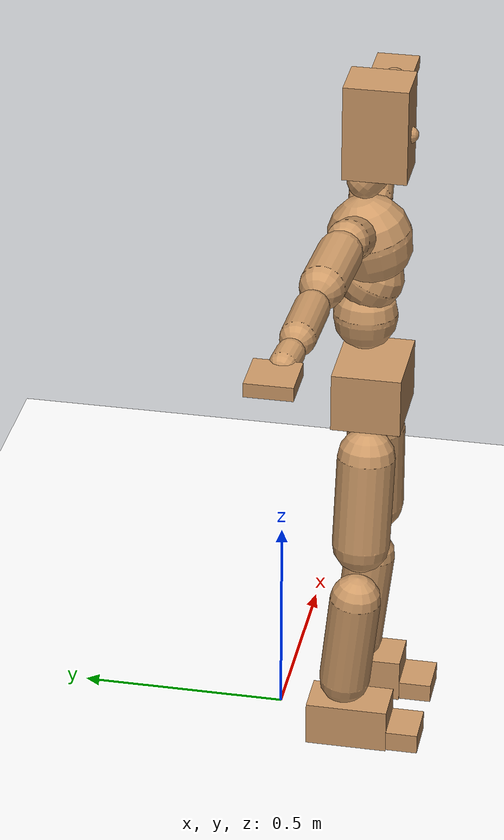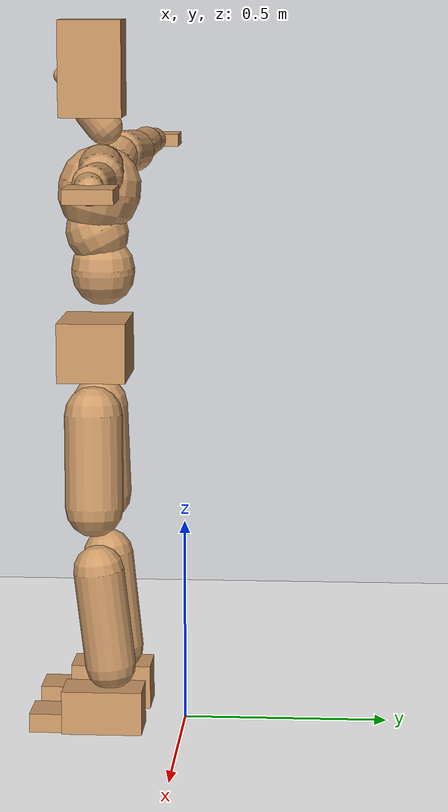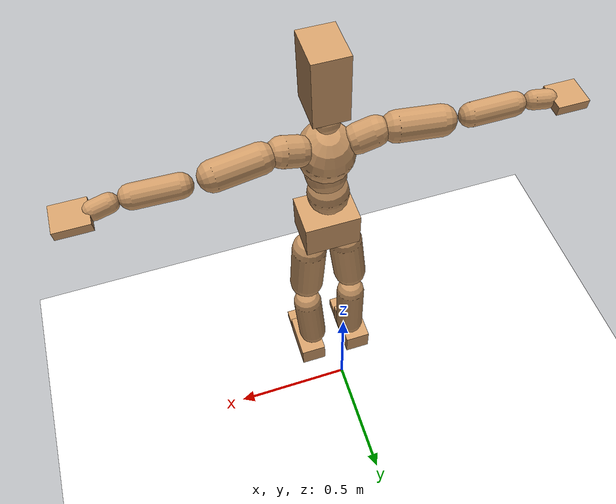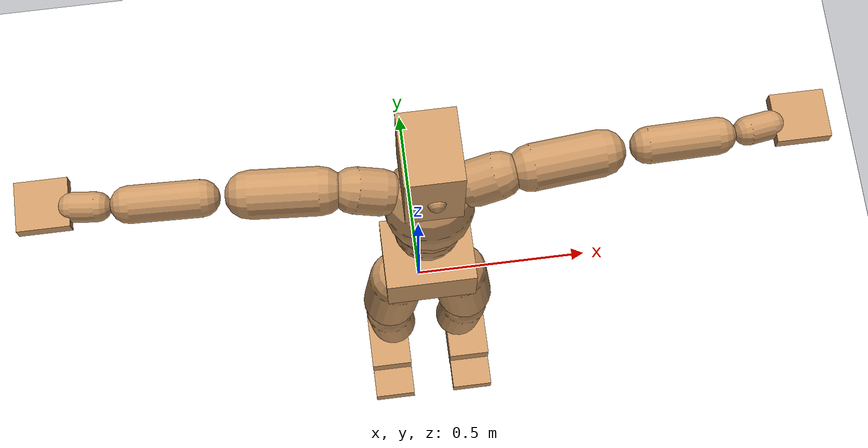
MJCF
<mujoco model="humanoid">
  <option integrator="implicitfast" />

  <visual>
    <global offwidth="1280" offheight="960" />
    <headlight active="1" ambient="0.34 0.34 0.34" diffuse="0.5 0.5 0.5" />
  </visual>

  <default>
    <joint damping="2" stiffness="2" armature="0.01" limited="true" solimplimit="0 .99 .01" />
    <geom condim="1" friction="0.7 0.005 0.0001" solimp=".99 .99 .003" solref="0.015 1" margin="0.001" rgba="0.8 0.6 .4 1" />
    <default class="smplcontact">
      <geom condim="3" friction="1. 0.005 0.0001" solref="0.015 1" solimp="0.98 0.98 0.001" priority="1" />
    </default>
    <default class="stiff_medium">
      <joint stiffness="10" />
    </default>
    <default class="stiff_medium_higher">
      <joint stiffness="50" />
    </default>
    <default class="stiff_high">
      <joint stiffness="100" />
    </default>
  </default>

  <asset>
    <texture type="skybox" builtin="gradient" rgb1="0.99 0.99 0.99" rgb2="0.608 0.828 0.892" width="100" />
    <texture builtin="flat" height="1278" mark="cross" markrgb="1 1 1" name="texgeom" random="0.01" rgb1="0.8 0.6 0.4" rgb2="0.8 0.6 0.4" type="cube" width="127" />
    <texture name="texplane" type="2d" builtin="checker" markrgb="1 1 1" rgb1="0.756 0.772 0.76" rgb2="0.6 0.6 0.6" width="100" height="100" />
    <material name="MatPlane" reflectance="0.5" texture="texplane" texrepeat="1 1" texuniform="true" />
    <material name="geom" texture="texgeom" texuniform="true" />
  </asset>

  <worldbody>
    <light name="tracking_light" pos="0 0 7" dir="0 0 -1" directional="true" cutoff="100" exponent="1" diffuse="1 1 1" specular="0.1 0.1 0.1" mode="trackcom" />
    <camera name="back" pos="0 3 2.4" xyaxes="-1 0 0 0 -1 2" mode="trackcom" />
    <camera name="side" pos="-3 0 2.4" xyaxes="0 -1 0 1 0 2" mode="trackcom" />
    <camera name="front_side" pos="-2.8 -2.8 0.8" xyaxes="0.5 -0.5 0 0.1 0.1 1" mode="trackcom" />
    <geom condim="3" name="floor" pos="0 0 0" rgba="1 1 1 1" size="100 100 .2" type="plane" material="MatPlane" />
    <body name="Pelvis" pos="-0.0018 -0.2233 0.94387" euler="90 0 0">
      <site name="Pelvis" size="0.01" />
      <freejoint name="Pelvis" />
      <geom type="box" pos="-0.0000 -0.0121 -0.0055" size="0.1069 0.0722 0.083" quat="1.0000 0.0000 0.0000 0.0000" density="3165.830099" name="Pelvis" />
      <body name="L_Hip" pos="0.0695 -0.0914 -0.0068">
        <joint name="L_Hip_x" type="hinge" pos="0 0 0" axis="1 0 0" stiffness="13.888139761904764" range="-160.0 22.92" class="stiff_medium" damping="21.039901989370083" armature="0.014166443320590734"/>
        <joint name="L_Hip_y" type="hinge" pos="0 0 0" axis="0 1 0" stiffness="13.923243095238096" range="-70.0 70.0" class="stiff_medium" damping="15.258375011262281" armature="0.016721535808272972"/>
        <joint name="L_Hip_z" type="hinge" pos="0 0 0" axis="0 0 1" stiffness="13.915029642857142" range="-28.65 90.0" class="stiff_medium" damping="14.038260696134163" armature="0.014162583079640552"/>
        <geom type="capsule" density="2040.816327" fromto="0.0069 -0.075 -0.0009 0.0274 -0.3002 -0.0036" size="0.070725" name="L_Hip" />
        <body name="L_Knee" pos="0.0343 -0.3752 -0.0045">
          <joint name="L_Knee_x" type="hinge" pos="0 0 0" axis="1 0 0" range="-5.16 171.89" damping="11.4820242679251" armature="0.014565973855622034" stiffness="2.8284429047619044"/>
          <joint name="L_Knee_y" type="hinge" pos="0 0 0" axis="0 1 0" range="-4.58 6.88" damping="12.390321794406205" armature="0.017184878323046177" stiffness="2.7916999047619044"/>
          <joint name="L_Knee_z" type="hinge" pos="0 0 0" axis="0 0 1" range="-6.88 4.58" damping="11.480192879362214" armature="0.014546602847254822" stiffness="2.8313059999999997"/>
          <geom type="capsule" density="1234.567901" fromto="-0.0027 -0.0796 -0.0087 -0.0109 -0.3184 -0.035" size="0.062215" name="L_Knee" />
          <body name="L_Ankle" pos="-0.0136 -0.398 -0.0437">
            <joint name="L_Ankle_x" type="hinge" pos="0 0 0" axis="1 0 0" range="-45.84 45.84" class="stiff_medium" damping="9.615703597889492" armature="0.01688752923343926" stiffness="15.208749999999998"/>
            <joint name="L_Ankle_y" type="hinge" pos="0 0 0" axis="0 1 0" range="-74.48 22.92" class="stiff_medium" damping="4.824905716367604" armature="0.01700754512430657" stiffness="15.208749999999998"/>
            <joint name="L_Ankle_z" type="hinge" pos="0 0 0" axis="0 0 1" range="-4.58 4.58" class="stiff_medium" damping="9.870190519434976" armature="0.01779324053038622" stiffness="15.208749999999998"/>
            <geom type="box" pos="0.0233 -0.0239 0.0242" size="0.055545 0.05336 0.09775" quat="1.0000 0.0000 0.0000 0.0000" density="449.071558" name="L_Ankle" class="smplcontact" />
            <body name="L_Toe" pos="0.0264 -0.0558 0.1193">
              <joint name="L_Toe_x" type="hinge" pos="0 0 0" axis="1 0 0" range="-91.67 22.92" armature="0.0182488178904167" damping="3.3319166201504795" stiffness="3.0417499999999995"/>
              <joint name="L_Toe_y" type="hinge" pos="0 0 0" axis="0 1 0" range="-4.58 4.58" armature="0.01879970215020376" damping="3.381833645092031" stiffness="3.0417499999999995"/>
              <joint name="L_Toe_z" type="hinge" pos="0 0 0" axis="0 0 1" range="-4.58 4.58" armature="0.019913560472276957" damping="3.480576750096122" stiffness="3.0417499999999995"/>
              <geom type="box" pos="-0.003 0.0055 0.0248" size="0.05497 0.023 0.05704" quat="1.0000 0.0000 0.0000 0.0000" density="423.206892" name="L_Toe" class="smplcontact" />
            </body>
          </body>
        </body>
      </body>
      <body name="R_Hip" pos="-0.0677 -0.0905 -0.0043">
        <joint name="R_Hip_x" type="hinge" pos="0 0 0" axis="1 0 0" stiffness="13.888139761904764" range="-160.0 22.92" class="stiff_medium" damping="21.039901989370083" armature="0.014166443320590734"/>
        <joint name="R_Hip_y" type="hinge" pos="0 0 0" axis="0 1 0" stiffness="13.923243095238096" range="-70.0 70.0" class="stiff_medium" damping="15.258375011262281" armature="0.016721535808272972"/>
        <joint name="R_Hip_z" type="hinge" pos="0 0 0" axis="0 0 1" stiffness="13.915029642857142" range="-90.0 28.65" class="stiff_medium" damping="14.038260696134163" armature="0.014162583079640552"/>
        <geom type="capsule" density="2040.816327" fromto="-0.0077 -0.0765 -0.0018 -0.0306 -0.3061 -0.0071" size="0.06969" name="R_Hip" />
        <body name="R_Knee" pos="-0.0383 -0.3826 -0.0089">
          <joint name="R_Knee_x" type="hinge" pos="0 0 0" axis="1 0 0" range="-5.16 171.89" damping="11.4820242679251" armature="0.014565973855622034" stiffness="2.8284429047619044"/>
          <joint name="R_Knee_y" type="hinge" pos="0 0 0" axis="0 1 0" range="-6.88 4.58" damping="12.390321794406205" armature="0.017184878323046177" stiffness="2.7916999047619044"/>
          <joint name="R_Knee_z" type="hinge" pos="0 0 0" axis="0 0 1" range="-4.58 6.88" damping="11.480192879362214" armature="0.014546602847254822" stiffness="2.8313059999999997"/>
          <geom type="capsule" density="1234.567901" fromto="0.0032 -0.0797 -0.0085 0.0126 -0.3187 -0.0338" size="0.062215" name="R_Knee" />
          <body name="R_Ankle" pos="0.0158 -0.3984 -0.0423">
            <joint name="R_Ankle_x" type="hinge" pos="0 0 0" axis="1 0 0" range="-45.84 45.84" class="stiff_medium" damping="9.615703597889492" armature="0.01688752923343926" stiffness="15.208749999999998"/>
            <joint name="R_Ankle_y" type="hinge" pos="0 0 0" axis="0 1 0" range="-22.92 74.48" class="stiff_medium" damping="4.824905716367604" armature="0.01700754512430657" stiffness="15.208749999999998"/>
            <joint name="R_Ankle_z" type="hinge" pos="0 0 0" axis="0 0 1" range="-4.58 4.58" class="stiff_medium" damping="9.870190519434976" armature="0.01779324053038622" stiffness="15.208749999999998"/>
            <geom type="box" pos="-0.0212 -0.0174 0.0256" size="0.055545 0.05497 0.099475" quat="1.0000 0.0000 0.0000 0.0000" density="434.700981" name="R_Ankle" class="smplcontact" />
            <body name="R_Toe" pos="-0.0254 -0.0481 0.1233">
              <joint name="R_Toe_x" type="hinge" pos="0 0 0" axis="1 0 0" range="-91.67 22.92" armature="0.0182488178904167" damping="3.3319166201504795" stiffness="3.0417499999999995"/>
              <joint name="R_Toe_y" type="hinge" pos="0 0 0" axis="0 1 0" range="-4.58 4.58" armature="0.01879970215020376" damping="3.381833645092031" stiffness="3.0417499999999995"/>
              <joint name="R_Toe_z" type="hinge" pos="0 0 0" axis="0 0 1" range="-4.58 4.58" armature="0.019913560472276957" damping="3.480576750096122" stiffness="3.0417499999999995"/>
              <geom type="box" pos="0.0042 0.0045 0.0227" size="0.055085 0.02484 0.056695" quat="1.0000 0.0000 0.0000 0.0000" density="407.384095" name="R_Toe" class="smplcontact" />
            </body>
          </body>
        </body>
      </body>
      <body name="Torso" pos="-0.0025 0.109 -0.0267">
        <joint name="Torso_x" type="hinge" pos="0 0 0" axis="1 0 0" range="-25.78 57.3" class="stiff_medium" damping="15.0" armature="0.010000000000000002" stiffness="10.0"/>
        <joint name="Torso_y" type="hinge" pos="0 0 0" axis="0 1 0" range="-57.3 57.3" class="stiff_high" damping="20.000000000000004" armature="0.010000000000000005" stiffness="100.0"/>
        <joint name="Torso_z" type="hinge" pos="0 0 0" axis="0 0 1" range="-34.38 34.38" class="stiff_high" damping="20.0" armature="0.01" stiffness="100.0"/>
        <geom type="capsule" density="2040.816327" fromto="0.0025 0.0608 0.0005 0.003 0.0743 0.0006" size="0.0769" name="Torso" />
        <body name="Spine" pos="0.0055 0.1352 0.0011">
          <joint name="Spine_x" type="hinge" pos="0 0 0" axis="1 0 0" stiffness="10.0" range="-25.78 57.3" class="stiff_medium" damping="15.000000000000004" armature="0.010000000000000007"/>
          <joint name="Spine_y" type="hinge" pos="0 0 0" axis="0 1 0" stiffness="10.0" range="-57.3 57.3" class="stiff_high" damping="8.0" armature="0.010000000000000002"/>
          <joint name="Spine_z" type="hinge" pos="0 0 0" axis="0 0 1" stiffness="20.0" range="-34.38 34.38" class="stiff_high" damping="12.0" armature="0.010000000000000002"/>
          <geom type="capsule" density="2040.816327" fromto="0.0007 0.0238 0.0114 0.0008 0.0291 0.014" size="0.0755" name="Spine" />
          <body name="Chest" pos="0.0015 0.0529 0.0254">
            <joint name="Chest_x" type="hinge" pos="0 0 0" axis="1 0 0" stiffness="10.0" range="-25.78 57.3" class="stiff_medium" damping="14.999999999999996" armature="0.009999999999999997"/>
            <joint name="Chest_y" type="hinge" pos="0 0 0" axis="0 1 0" stiffness="10.0" range="-57.3 57.3" class="stiff_high" damping="8.000000000000002" armature="0.010000000000000005"/>
            <joint name="Chest_z" type="hinge" pos="0 0 0" axis="0 0 1" stiffness="20.0" range="-34.38 34.38" class="stiff_high" damping="12.0" armature="0.010000000000000002"/>
            <geom type="capsule" density="2040.816327" fromto="-0.0009 0.0682 -0.0173 -0.001 0.0833 -0.0212" size="0.1002" name="Chest" />
            <body name="Neck" pos="-0.0028 0.2139 -0.0429">
              <joint name="Neck_x" type="hinge" pos="0 0 0" axis="1 0 0" range="-28.65 57.3" class="stiff_medium_higher" damping="9.999999999999998" armature="0.009999999999999995" stiffness="50.0"/>
              <joint name="Neck_y" type="hinge" pos="0 0 0" axis="0 1 0" range="-40.11 40.11" class="stiff_medium_higher" damping="10.0" armature="0.01" stiffness="50.0"/>
              <joint name="Neck_z" type="hinge" pos="0 0 0" axis="0 0 1" range="-40.11 40.11" class="stiff_medium_higher" damping="9.999999999999996" armature="0.009999999999999992" stiffness="50.0"/>
              <geom type="capsule" density="1000" fromto="0.001 0.013 0.0103 0.0041 0.052 0.0411" size="0.0436" name="Neck" />
              <body name="Head" pos="0.0052 0.065 0.0513">
                <joint name="Head_x" type="hinge" pos="0 0 0" axis="1 0 0" range="-28.65 57.3" class="stiff_medium_higher" damping="1.9999999999999967" armature="0.009999999999999967" stiffness="50.0"/>
                <joint name="Head_y" type="hinge" pos="0 0 0" axis="0 1 0" range="-40.11 40.11" class="stiff_medium_higher" damping="1.9999999999999998" armature="0.009999999999999998" stiffness="50.0"/>
                <joint name="Head_z" type="hinge" pos="0 0 0" axis="0 0 1" range="-40.11 40.11" class="stiff_medium_higher" damping="1.999999999999999" armature="0.00999999999999999" stiffness="50.0"/>
                <geom type="box" pos="-0.0042 0.0876 -0.0116" size="0.0606 0.1154 0.076" quat="1.0000 0.0000 0.0000 0.0000" density="1018.069894" name="Head" />
                <geom type="capsule" name="nose" size="0.02 0.01" pos="0 0.07 0.05" quat="1 0 0 0" mass="0" contype="0" conaffinity="0" />
              </body>
            </body>
            <body name="L_Thorax" pos="0.0788 0.1217 -0.0341">
              <joint name="L_Thorax_x" type="hinge" pos="0 0 0" axis="1 0 0" range="-10.89 4.58" class="stiff_medium_higher" damping="20.000000000000217" armature="0.010000000000000217" stiffness="50.0"/>
              <joint name="L_Thorax_y" type="hinge" pos="0 0 0" axis="0 1 0" range="-28.65 17.19" class="stiff_medium_higher" damping="20.000000000000004" armature="0.010000000000000005" stiffness="50.0"/>
              <joint name="L_Thorax_z" type="hinge" pos="0 0 0" axis="0 0 1" range="-31.51 40.11" class="stiff_medium_higher" damping="20.0" armature="0.010000000000000002" stiffness="50.0"/>
              <geom type="capsule" density="1000" fromto="0.0182 0.0061 -0.0018 0.0728 0.0244 -0.0071" size="0.0521" name="L_Thorax" />
              <body name="L_Shoulder" pos="0.091 0.0305 -0.0089">
                <joint name="L_Shoulder_x" type="hinge" pos="0 0 0" axis="1 0 0" range="-97.4 97.4" class="stiff_medium" damping="6.000000000000091" armature="0.010000000000000302" stiffness="10.0"/>
                <joint name="L_Shoulder_y" type="hinge" pos="0 0 0" axis="0 1 0" range="-108.86 80.21" class="stiff_medium" damping="6.0" armature="0.01" stiffness="10.0"/>
                <joint name="L_Shoulder_z" type="hinge" pos="0 0 0" axis="0 0 1" range="-97.4 85.94" class="stiff_medium" damping="6.000000000000002" armature="0.010000000000000005" stiffness="10.0"/>
                <geom type="capsule" density="1000" fromto="0.0519 -0.0026 -0.0055 0.2077 -0.0102 -0.022" size="0.0517" name="L_Shoulder" />
                <body name="L_Elbow" pos="0.2596 -0.0128 -0.0275">
                  <joint name="L_Elbow_x" type="hinge" pos="0 0 0" axis="1 0 0" range="-17.19 4.58" damping="4.999999999999822" armature="0.00999999999999929" stiffness="2.0"/>
                  <joint name="L_Elbow_y" type="hinge" pos="0 0 0" axis="0 1 0" range="-180.0 17.19" damping="5.000000000000007" armature="0.010000000000000026" stiffness="2.0"/>
                  <joint name="L_Elbow_z" type="hinge" pos="0 0 0" axis="0 0 1" range="-100.84 4.58" damping="4.999999999999998" armature="0.009999999999999993" stiffness="2.0"/>
                  <geom type="capsule" density="1000" fromto="0.0498 0.0018 -0.0002 0.1994 0.0072 -0.0009" size="0.0405" name="L_Elbow" />
                  <body name="L_Wrist" pos="0.2492 0.009 -0.0012">
                    <joint name="L_Wrist_x" type="hinge" pos="0 0 0" axis="1 0 0" range="-180.0 22.92" armature="0.009999999999999724" damping="1.9999999999999725" stiffness="2.0"/>
                    <joint name="L_Wrist_y" type="hinge" pos="0 0 0" axis="0 1 0" range="-17.19 17.19" armature="0.00999999999999995" damping="1.999999999999995" stiffness="2.0"/>
                    <joint name="L_Wrist_z" type="hinge" pos="0 0 0" axis="0 0 1" range="-22.92 22.92" armature="0.009999999999999946" damping="1.9999999999999947" stiffness="2.0"/>
                    <geom type="capsule" density="1000" fromto="0.0168 -0.0016 -0.003 0.0672 -0.0065 -0.012" size="0.0318" name="L_Wrist" class="smplcontact" />
                    <body name="L_Hand" pos="0.084 -0.0082 -0.0149">
                      <joint name="L_Hand_x" type="hinge" pos="0 0 0" axis="1 0 0" range="-17.19 17.19" armature="0.010000000000000005" damping="2.0000000000000004" stiffness="2.0"/>
                      <joint name="L_Hand_y" type="hinge" pos="0 0 0" axis="0 1 0" range="-51.57 51.57" armature="0.009999999999999974" damping="1.9999999999999973" stiffness="2.0"/>
                      <joint name="L_Hand_z" type="hinge" pos="0 0 0" axis="0 0 1" range="-91.67 91.67" armature="0.010000000000000054" damping="2.0000000000000053" stiffness="2.0"/>
                      <geom type="box" pos="0.0493 0.001 -0.0058" size="0.0585 0.0158 0.0538" quat="1.0000 0.0000 0.0000 0.0000" density="400.552564" name="L_Hand" class="smplcontact" />
                    </body>
                  </body>
                </body>
              </body>
            </body>
            <body name="R_Thorax" pos="-0.0818 0.1188 -0.0386">
              <joint name="R_Thorax_x" type="hinge" pos="0 0 0" axis="1 0 0" range="-10.89 4.58" class="stiff_medium_higher" damping="20.000000000000217" armature="0.010000000000000217" stiffness="50.0"/>
              <joint name="R_Thorax_y" type="hinge" pos="0 0 0" axis="0 1 0" range="-17.19 28.65" class="stiff_medium_higher" damping="20.000000000000004" armature="0.010000000000000005" stiffness="50.0"/>
              <joint name="R_Thorax_z" type="hinge" pos="0 0 0" axis="0 0 1" range="-40.11 31.51" class="stiff_medium_higher" damping="20.0" armature="0.010000000000000002" stiffness="50.0"/>
              <geom type="capsule" density="1000" fromto="-0.0192 0.0065 -0.0018 -0.0768 0.026 -0.0073" size="0.0511" name="R_Thorax" />
              <body name="R_Shoulder" pos="-0.096 0.0326 -0.0091">
                <joint name="R_Shoulder_x" type="hinge" pos="0 0 0" axis="1 0 0" range="-97.4 97.4" class="stiff_medium" damping="6.000000000000091" armature="0.010000000000000302" stiffness="10.0"/>
                <joint name="R_Shoulder_y" type="hinge" pos="0 0 0" axis="0 1 0" range="-80.21 108.86" class="stiff_medium" damping="6.0" armature="0.01" stiffness="10.0"/>
                <joint name="R_Shoulder_z" type="hinge" pos="0 0 0" axis="0 0 1" range="-85.94 97.4" class="stiff_medium" damping="6.000000000000002" armature="0.010000000000000005" stiffness="10.0"/>
                <geom type="capsule" density="1000" fromto="-0.0507 -0.0027 -0.0043 -0.203 -0.0107 -0.0171" size="0.0531" name="R_Shoulder" />
                <body name="R_Elbow" pos="-0.2537 -0.0133 -0.0214">
                  <joint name="R_Elbow_x" type="hinge" pos="0 0 0" axis="1 0 0" range="-17.19 4.58" damping="4.999999999999822" armature="0.00999999999999929" stiffness="2.0"/>
                  <joint name="R_Elbow_y" type="hinge" pos="0 0 0" axis="0 1 0" range="-17.19 180.0" damping="5.000000000000007" armature="0.010000000000000026" stiffness="2.0"/>
                  <joint name="R_Elbow_z" type="hinge" pos="0 0 0" axis="0 0 1" range="-4.58 100.84" damping="4.999999999999998" armature="0.009999999999999993" stiffness="2.0"/>
                  <geom type="capsule" density="1000" fromto="-0.0511 0.0016 -0.0011 -0.2042 0.0062 -0.0044" size="0.0408" name="R_Elbow" />
                  <body name="R_Wrist" pos="-0.2553 0.0078 -0.0056">
                    <joint name="R_Wrist_x" type="hinge" pos="0 0 0" axis="1 0 0" range="-180.0 22.92" armature="0.009999999999999724" damping="1.9999999999999725" stiffness="2.0"/>
                    <joint name="R_Wrist_y" type="hinge" pos="0 0 0" axis="0 1 0" range="-17.19 17.19" armature="0.00999999999999995" damping="1.999999999999995" stiffness="2.0"/>
                    <joint name="R_Wrist_z" type="hinge" pos="0 0 0" axis="0 0 1" range="-22.92 22.92" armature="0.009999999999999946" damping="1.9999999999999947" stiffness="2.0"/>
                    <geom type="capsule" density="1000" fromto="-0.0169 -0.0012 -0.0021 -0.0677 -0.0049 -0.0083" size="0.0326" name="R_Wrist" class="smplcontact" />
                    <body name="R_Hand" pos="-0.0846 -0.0061 -0.0103">
                      <joint name="R_Hand_x" type="hinge" pos="0 0 0" axis="1 0 0" range="-17.19 17.19" armature="0.010000000000000005" damping="2.0000000000000004" stiffness="2.0"/>
                      <joint name="R_Hand_y" type="hinge" pos="0 0 0" axis="0 1 0" range="-51.57 51.57" armature="0.009999999999999974" damping="1.9999999999999973" stiffness="2.0"/>
                      <joint name="R_Hand_z" type="hinge" pos="0 0 0" axis="0 0 1" range="-91.67 91.67" armature="0.010000000000000054" damping="2.0000000000000053" stiffness="2.0"/>
                      <geom type="box" pos="-0.0462 -0.0009 -0.0079" size="0.0569 0.0164 0.0546" quat="1.0000 0.0000 0.0000 0.0000" density="403.679611" name="R_Hand" class="smplcontact" />
                    </body>
                  </body>
                </body>
              </body>
            </body>
          </body>
        </body>
      </body>
    </body>
  </worldbody>
  <actuator>
    <general name="L_Hip_x" joint="L_Hip_x" biastype="affine" gainprm="399.0480087980668" biasprm="-299.04603677038597 -249.98651571428573 -2.8053202652493443" ctrllimited="true" ctrlrange="-1 1" forcerange="-499.97303142857146 499.97303142857146" />
    <general name="L_Hip_y" joint="L_Hip_y" biastype="affine" gainprm="306.1881075550137" biasprm="0.0 -250.61837571428572 -3.0516750022524564" ctrllimited="true" ctrlrange="-1 1" forcerange="-501.23675142857144 501.23675142857144" />
    <general name="L_Hip_z" joint="L_Hip_z" biastype="affine" gainprm="259.34134294712254" biasprm="134.09685115723528 -250.47053357142855 -2.8076521392268328" ctrllimited="true" ctrlrange="-1 1" forcerange="-500.9410671428571 500.9410671428571" />
    <general name="L_Knee_x" joint="L_Knee_x" biastype="affine" gainprm="393.30840638652796" biasprm="370.3830025237266 -254.5598614285714 -2.870506066981275" ctrllimited="true" ctrlrange="-1 1" forcerange="-509.1197228571428 509.1197228571428" />
    <general name="L_Knee_y" joint="L_Knee_y" biastype="affine" gainprm="25.127149907385284" biasprm="5.042970749300712 -251.2529914285714 -3.0975804486015512" ctrllimited="true" ctrlrange="-1 1" forcerange="-502.5059828571428 502.5059828571428" />
    <general name="L_Knee_z" joint="L_Knee_z" biastype="affine" gainprm="25.48363102148937" biasprm="-5.114515824557204 -254.81753999999998 -2.8700482198405535" ctrllimited="true" ctrlrange="-1 1" forcerange="-509.63507999999996 509.63507999999996" />
    <general name="L_Ankle_x" joint="L_Ankle_x" biastype="affine" gainprm="109.5110661434904" biasprm="0.0 -136.87874999999997 -3.205234532629831" ctrllimited="true" ctrlrange="-1 1" forcerange="-273.75749999999994 273.75749999999994" />
    <general name="L_Ankle_y" joint="L_Ankle_y" biastype="affine" gainprm="116.34356285314097" biasprm="-61.588029781395775 -136.87874999999997 -3.2166038109117356" ctrllimited="true" ctrlrange="-1 1" forcerange="-273.75749999999994 273.75749999999994" />
    <general name="L_Ankle_z" joint="L_Ankle_z" biastype="affine" gainprm="10.94155067489498" biasprm="0.0 -136.87874999999997 -3.2900635064783255" ctrllimited="true" ctrlrange="-1 1" forcerange="-273.75749999999994 273.75749999999994" />
    <general name="L_Toe_x" joint="L_Toe_x" biastype="affine" gainprm="109.50151020403631" biasprm="-65.69708374664016 -109.50299999999999 -1.3327666480601918" ctrllimited="true" ctrlrange="-1 1" forcerange="-219.00599999999997 219.00599999999997" />
    <general name="L_Toe_y" joint="L_Toe_y" biastype="affine" gainprm="8.753240539915984" biasprm="0.0 -109.50299999999999 -1.3527334580368127" ctrllimited="true" ctrlrange="-1 1" forcerange="-219.00599999999997 219.00599999999997" />
    <general name="L_Toe_z" joint="L_Toe_z" biastype="affine" gainprm="8.753240539915984" biasprm="0.0 -109.50299999999999 -1.392230700038449" ctrllimited="true" ctrlrange="-1 1" forcerange="-219.00599999999997 219.00599999999997" />
    <general name="R_Hip_x" joint="R_Hip_x" biastype="affine" gainprm="399.0480087980668" biasprm="-299.04603677038597 -249.98651571428573 -2.8053202652493443" ctrllimited="true" ctrlrange="-1 1" forcerange="-499.97303142857146 499.97303142857146" />
    <general name="R_Hip_y" joint="R_Hip_y" biastype="affine" gainprm="306.1881075550137" biasprm="0.0 -250.61837571428572 -3.0516750022524564" ctrllimited="true" ctrlrange="-1 1" forcerange="-501.23675142857144 501.23675142857144" />
    <general name="R_Hip_z" joint="R_Hip_z" biastype="affine" gainprm="259.34134294712254" biasprm="-134.09685115723528 -250.47053357142855 -2.8076521392268328" ctrllimited="true" ctrlrange="-1 1" forcerange="-500.9410671428571 500.9410671428571" />
    <general name="R_Knee_x" joint="R_Knee_x" biastype="affine" gainprm="393.30840638652796" biasprm="370.3830025237266 -254.5598614285714 -2.870506066981275" ctrllimited="true" ctrlrange="-1 1" forcerange="-509.1197228571428 509.1197228571428" />
    <general name="R_Knee_y" joint="R_Knee_y" biastype="affine" gainprm="25.127149907385284" biasprm="-5.042970749300712 -251.2529914285714 -3.0975804486015512" ctrllimited="true" ctrlrange="-1 1" forcerange="-502.5059828571428 502.5059828571428" />
    <general name="R_Knee_z" joint="R_Knee_z" biastype="affine" gainprm="25.48363102148937" biasprm="5.114515824557204 -254.81753999999998 -2.8700482198405535" ctrllimited="true" ctrlrange="-1 1" forcerange="-509.63507999999996 509.63507999999996" />
    <general name="R_Ankle_x" joint="R_Ankle_x" biastype="affine" gainprm="109.5110661434904" biasprm="0.0 -136.87874999999997 -3.205234532629831" ctrllimited="true" ctrlrange="-1 1" forcerange="-273.75749999999994 273.75749999999994" />
    <general name="R_Ankle_y" joint="R_Ankle_y" biastype="affine" gainprm="116.34356285314097" biasprm="61.588029781395775 -136.87874999999997 -3.2166038109117356" ctrllimited="true" ctrlrange="-1 1" forcerange="-273.75749999999994 273.75749999999994" />
    <general name="R_Ankle_z" joint="R_Ankle_z" biastype="affine" gainprm="10.94155067489498" biasprm="0.0 -136.87874999999997 -3.2900635064783255" ctrllimited="true" ctrlrange="-1 1" forcerange="-273.75749999999994 273.75749999999994" />
    <general name="R_Toe_x" joint="R_Toe_x" biastype="affine" gainprm="109.50151020403631" biasprm="-65.69708374664016 -109.50299999999999 -1.3327666480601918" ctrllimited="true" ctrlrange="-1 1" forcerange="-219.00599999999997 219.00599999999997" />
    <general name="R_Toe_y" joint="R_Toe_y" biastype="affine" gainprm="8.753240539915984" biasprm="0.0 -109.50299999999999 -1.3527334580368127" ctrllimited="true" ctrlrange="-1 1" forcerange="-219.00599999999997 219.00599999999997" />
    <general name="R_Toe_z" joint="R_Toe_z" biastype="affine" gainprm="8.753240539915984" biasprm="0.0 -109.50299999999999 -1.392230700038449" ctrllimited="true" ctrlrange="-1 1" forcerange="-219.00599999999997 219.00599999999997" />
    <general name="Torso_x" joint="Torso_x" biastype="affine" gainprm="174.00234510682668" biasprm="66.0153336274335 -240.0 -4.0" ctrllimited="true" ctrlrange="-1 1" forcerange="-360.0 360.0" />
    <general name="Torso_y" joint="Torso_y" biastype="affine" gainprm="240.0176787342602" biasprm="0.0 -240.0 -4.000000000000001" ctrllimited="true" ctrlrange="-1 1" forcerange="-360.0 360.0" />
    <general name="Torso_z" joint="Torso_z" biastype="affine" gainprm="144.01060724055614" biasprm="0.0 -240.0 -4.0" ctrllimited="true" ctrlrange="-1 1" forcerange="-360.0 360.0" />
    <general name="Spine_x" joint="Spine_x" biastype="affine" gainprm="174.00234510682668" biasprm="66.0153336274335 -240.0 -4.000000000000001" ctrllimited="true" ctrlrange="-1 1" forcerange="-360.0 360.0" />
    <general name="Spine_y" joint="Spine_y" biastype="affine" gainprm="240.0176787342602" biasprm="0.0 -240.0 -4.0" ctrllimited="true" ctrlrange="-1 1" forcerange="-360.0 360.0" />
    <general name="Spine_z" joint="Spine_z" biastype="affine" gainprm="144.01060724055614" biasprm="0.0 -240.0 -4.0" ctrllimited="true" ctrlrange="-1 1" forcerange="-360.0 360.0" />
    <general name="Chest_x" joint="Chest_x" biastype="affine" gainprm="174.00234510682668" biasprm="66.0153336274335 -240.0 -3.999999999999999" ctrllimited="true" ctrlrange="-1 1" forcerange="-360.0 360.0" />
    <general name="Chest_y" joint="Chest_y" biastype="affine" gainprm="240.0176787342602" biasprm="0.0 -240.0 -4.000000000000001" ctrllimited="true" ctrlrange="-1 1" forcerange="-360.0 360.0" />
    <general name="Chest_z" joint="Chest_z" biastype="affine" gainprm="144.01060724055614" biasprm="0.0 -240.0 -4.0" ctrllimited="true" ctrlrange="-1 1" forcerange="-360.0 360.0" />
    <general name="Neck_x" joint="Neck_x" biastype="affine" gainprm="27.00198885760427" biasprm="9.000662952534757 -36.0 -0.7999999999999998" ctrllimited="true" ctrlrange="-1 1" forcerange="-72.0 72.0" />
    <general name="Neck_y" joint="Neck_y" biastype="affine" gainprm="25.20185626709732" biasprm="0.0 -36.0 -0.8" ctrllimited="true" ctrlrange="-1 1" forcerange="-72.0 72.0" />
    <general name="Neck_z" joint="Neck_z" biastype="affine" gainprm="25.20185626709732" biasprm="0.0 -36.0 -0.7999999999999997" ctrllimited="true" ctrlrange="-1 1" forcerange="-72.0 72.0" />
    <general name="Head_x" joint="Head_x" biastype="affine" gainprm="18.001325905069514" biasprm="6.000441968356505 -24.0 -0.7999999999999987" ctrllimited="true" ctrlrange="-1 1" forcerange="-48.0 48.0" />
    <general name="Head_y" joint="Head_y" biastype="affine" gainprm="16.801237511398213" biasprm="0.0 -24.0 -0.7999999999999999" ctrllimited="true" ctrlrange="-1 1" forcerange="-48.0 48.0" />
    <general name="Head_z" joint="Head_z" biastype="affine" gainprm="16.801237511398213" biasprm="0.0 -24.0 -0.7999999999999996" ctrllimited="true" ctrlrange="-1 1" forcerange="-48.0 48.0" />
    <general name="L_Thorax_x" joint="L_Thorax_x" biastype="affine" gainprm="16.200146117011364" biasprm="-6.6078165480505335 -120.0 -1.6000000000000174" ctrllimited="true" ctrlrange="-1 1" forcerange="-240.0 240.0" />
    <general name="L_Thorax_y" joint="L_Thorax_y" biastype="affine" gainprm="48.00353574685204" biasprm="-12.00088393671301 -120.0 -1.6000000000000005" ctrllimited="true" ctrlrange="-1 1" forcerange="-240.0 240.0" />
    <general name="L_Thorax_z" joint="L_Thorax_z" biastype="affine" gainprm="75.00028861670033" biasprm="9.00589894029074 -120.0 -1.6" ctrllimited="true" ctrlrange="-1 1" forcerange="-240.0 240.0" />
    <general name="L_Shoulder_x" joint="L_Shoulder_x" biastype="affine" gainprm="81.5976331892389" biasprm="0.0 -48.0 -1.6000000000000243" ctrllimited="true" ctrlrange="-1 1" forcerange="-96.0 96.0" />
    <general name="L_Shoulder_y" joint="L_Shoulder_y" biastype="affine" gainprm="79.19745640189629" biasprm="-12.00088393671301 -48.0 -1.6" ctrllimited="true" ctrlrange="-1 1" forcerange="-96.0 96.0" />
    <general name="L_Shoulder_z" joint="L_Shoulder_z" biastype="affine" gainprm="76.79727961455369" biasprm="-4.800353574685214 -48.0 -1.6000000000000005" ctrllimited="true" ctrlrange="-1 1" forcerange="-96.0 96.0" />
    <general name="L_Elbow_x" joint="L_Elbow_x" biastype="affine" gainprm="13.67849441372996" biasprm="-7.923096672353461 -72.0 -0.7999999999999716" ctrllimited="true" ctrlrange="-1 1" forcerange="-144.0 144.0" />
    <general name="L_Elbow_y" joint="L_Elbow_y" biastype="affine" gainprm="123.89813107227425" biasprm="-102.29653998619085 -72.0 -0.8000000000000012" ctrllimited="true" ctrlrange="-1 1" forcerange="-144.0 144.0" />
    <general name="L_Elbow_z" joint="L_Elbow_z" biastype="affine" gainprm="66.23733950828719" biasprm="-60.4819417669107 -72.0 -0.7999999999999998" ctrllimited="true" ctrlrange="-1 1" forcerange="-144.0 144.0" />
    <general name="L_Wrist_x" joint="L_Wrist_x" biastype="affine" gainprm="21.24973270888136" biasprm="-16.449379134196157 -12.0 -0.799999999999989" ctrllimited="true" ctrlrange="-1 1" forcerange="-24.0 24.0" />
    <general name="L_Wrist_y" joint="L_Wrist_y" biastype="affine" gainprm="3.6002651810139037" biasprm="0.0 -12.0 -0.799999999999998" ctrllimited="true" ctrlrange="-1 1" forcerange="-24.0 24.0" />
    <general name="L_Wrist_z" joint="L_Wrist_z" biastype="affine" gainprm="4.800353574685205" biasprm="0.0 -12.0 -0.7999999999999979" ctrllimited="true" ctrlrange="-1 1" forcerange="-24.0 24.0" />
    <general name="L_Hand_x" joint="L_Hand_x" biastype="affine" gainprm="3.6002651810139037" biasprm="0.0 -12.0 -0.8000000000000003" ctrllimited="true" ctrlrange="-1 1" forcerange="-24.0 24.0" />
    <general name="L_Hand_y" joint="L_Hand_y" biastype="affine" gainprm="10.800795543041708" biasprm="0.0 -12.0 -0.7999999999999989" ctrllimited="true" ctrlrange="-1 1" forcerange="-24.0 24.0" />
    <general name="L_Hand_z" joint="L_Hand_z" biastype="affine" gainprm="19.199319903638422" biasprm="0.0 -12.0 -0.8000000000000022" ctrllimited="true" ctrlrange="-1 1" forcerange="-24.0 24.0" />
    <general name="R_Thorax_x" joint="R_Thorax_x" biastype="affine" gainprm="16.200146117011364" biasprm="-6.6078165480505335 -120.0 -1.6000000000000174" ctrllimited="true" ctrlrange="-1 1" forcerange="-240.0 240.0" />
    <general name="R_Thorax_y" joint="R_Thorax_y" biastype="affine" gainprm="48.00353574685204" biasprm="12.000883936713002 -120.0 -1.6000000000000005" ctrllimited="true" ctrlrange="-1 1" forcerange="-240.0 240.0" />
    <general name="R_Thorax_z" joint="R_Thorax_z" biastype="affine" gainprm="75.00028861670033" biasprm="-9.00589894029074 -120.0 -1.6" ctrllimited="true" ctrlrange="-1 1" forcerange="-240.0 240.0" />
    <general name="R_Shoulder_x" joint="R_Shoulder_x" biastype="affine" gainprm="81.5976331892389" biasprm="0.0 -48.0 -1.6000000000000243" ctrllimited="true" ctrlrange="-1 1" forcerange="-96.0 96.0" />
    <general name="R_Shoulder_y" joint="R_Shoulder_y" biastype="affine" gainprm="79.19745640189629" biasprm="12.00088393671301 -48.0 -1.6" ctrllimited="true" ctrlrange="-1 1" forcerange="-96.0 96.0" />
    <general name="R_Shoulder_z" joint="R_Shoulder_z" biastype="affine" gainprm="76.79727961455369" biasprm="4.800353574685204 -48.0 -1.6000000000000005" ctrllimited="true" ctrlrange="-1 1" forcerange="-96.0 96.0" />
    <general name="R_Elbow_x" joint="R_Elbow_x" biastype="affine" gainprm="13.67849441372996" biasprm="-7.923096672353461 -72.0 -0.7999999999999716" ctrllimited="true" ctrlrange="-1 1" forcerange="-144.0 144.0" />
    <general name="R_Elbow_y" joint="R_Elbow_y" biastype="affine" gainprm="123.89813107227425" biasprm="102.29653998619085 -72.0 -0.8000000000000012" ctrllimited="true" ctrlrange="-1 1" forcerange="-144.0 144.0" />
    <general name="R_Elbow_z" joint="R_Elbow_z" biastype="affine" gainprm="66.23733950828719" biasprm="60.481941766910694 -72.0 -0.7999999999999998" ctrllimited="true" ctrlrange="-1 1" forcerange="-144.0 144.0" />
    <general name="R_Wrist_x" joint="R_Wrist_x" biastype="affine" gainprm="21.24973270888136" biasprm="-16.449379134196157 -12.0 -0.799999999999989" ctrllimited="true" ctrlrange="-1 1" forcerange="-24.0 24.0" />
    <general name="R_Wrist_y" joint="R_Wrist_y" biastype="affine" gainprm="3.6002651810139037" biasprm="0.0 -12.0 -0.799999999999998" ctrllimited="true" ctrlrange="-1 1" forcerange="-24.0 24.0" />
    <general name="R_Wrist_z" joint="R_Wrist_z" biastype="affine" gainprm="4.800353574685205" biasprm="0.0 -12.0 -0.7999999999999979" ctrllimited="true" ctrlrange="-1 1" forcerange="-24.0 24.0" />
    <general name="R_Hand_x" joint="R_Hand_x" biastype="affine" gainprm="3.6002651810139037" biasprm="0.0 -12.0 -0.8000000000000003" ctrllimited="true" ctrlrange="-1 1" forcerange="-24.0 24.0" />
    <general name="R_Hand_y" joint="R_Hand_y" biastype="affine" gainprm="10.800795543041708" biasprm="0.0 -12.0 -0.7999999999999989" ctrllimited="true" ctrlrange="-1 1" forcerange="-24.0 24.0" />
    <general name="R_Hand_z" joint="R_Hand_z" biastype="affine" gainprm="19.199319903638422" biasprm="0.0 -12.0 -0.8000000000000022" ctrllimited="true" ctrlrange="-1 1" forcerange="-24.0 24.0" />
  </actuator>
  <contact>
    <exclude body1="Torso" body2="Chest" />
    <exclude body1="Head" body2="Chest" />
    <exclude body1="R_Knee" body2="R_Toe" />
    <exclude body1="R_Knee" body2="L_Ankle" />
    <exclude body1="R_Knee" body2="L_Toe" />
    <exclude body1="L_Knee" body2="L_Toe" />
    <exclude body1="L_Knee" body2="R_Ankle" />
    <exclude body1="L_Knee" body2="R_Toe" />
    <exclude body1="L_Shoulder" body2="Chest" />
    <exclude body1="R_Shoulder" body2="Chest" />
  </contact>
  <sensor>
    <framelinvel name="sensor_Pelvis_framelinvel" objtype="xbody" objname="Pelvis" />
    <framelinvel name="sensor_L_Hip_framelinvel" objtype="xbody" objname="L_Hip" />
    <framelinvel name="sensor_L_Knee_framelinvel" objtype="xbody" objname="L_Knee" />
    <framelinvel name="sensor_L_Ankle_framelinvel" objtype="xbody" objname="L_Ankle" />
    <framelinvel name="sensor_L_Toe_framelinvel" objtype="xbody" objname="L_Toe" />
    <framelinvel name="sensor_R_Hip_framelinvel" objtype="xbody" objname="R_Hip" />
    <framelinvel name="sensor_R_Knee_framelinvel" objtype="xbody" objname="R_Knee" />
    <framelinvel name="sensor_R_Ankle_framelinvel" objtype="xbody" objname="R_Ankle" />
    <framelinvel name="sensor_R_Toe_framelinvel" objtype="xbody" objname="R_Toe" />
    <framelinvel name="sensor_Torso_framelinvel" objtype="xbody" objname="Torso" />
    <framelinvel name="sensor_Spine_framelinvel" objtype="xbody" objname="Spine" />
    <framelinvel name="sensor_Chest_framelinvel" objtype="xbody" objname="Chest" />
    <framelinvel name="sensor_Neck_framelinvel" objtype="xbody" objname="Neck" />
    <framelinvel name="sensor_Head_framelinvel" objtype="xbody" objname="Head" />
    <framelinvel name="sensor_L_Thorax_framelinvel" objtype="xbody" objname="L_Thorax" />
    <framelinvel name="sensor_L_Shoulder_framelinvel" objtype="xbody" objname="L_Shoulder" />
    <framelinvel name="sensor_L_Elbow_framelinvel" objtype="xbody" objname="L_Elbow" />
    <framelinvel name="sensor_L_Wrist_framelinvel" objtype="xbody" objname="L_Wrist" />
    <framelinvel name="sensor_L_Hand_framelinvel" objtype="xbody" objname="L_Hand" />
    <framelinvel name="sensor_R_Thorax_framelinvel" objtype="xbody" objname="R_Thorax" />
    <framelinvel name="sensor_R_Shoulder_framelinvel" objtype="xbody" objname="R_Shoulder" />
    <framelinvel name="sensor_R_Elbow_framelinvel" objtype="xbody" objname="R_Elbow" />
    <framelinvel name="sensor_R_Wrist_framelinvel" objtype="xbody" objname="R_Wrist" />
    <framelinvel name="sensor_R_Hand_framelinvel" objtype="xbody" objname="R_Hand" />
    <frameangvel name="sensor_Pelvis_frameangvel" objtype="xbody" objname="Pelvis" />
    <frameangvel name="sensor_L_Hip_frameangvel" objtype="xbody" objname="L_Hip" />
    <frameangvel name="sensor_L_Knee_frameangvel" objtype="xbody" objname="L_Knee" />
    <frameangvel name="sensor_L_Ankle_frameangvel" objtype="xbody" objname="L_Ankle" />
    <frameangvel name="sensor_L_Toe_frameangvel" objtype="xbody" objname="L_Toe" />
    <frameangvel name="sensor_R_Hip_frameangvel" objtype="xbody" objname="R_Hip" />
    <frameangvel name="sensor_R_Knee_frameangvel" objtype="xbody" objname="R_Knee" />
    <frameangvel name="sensor_R_Ankle_frameangvel" objtype="xbody" objname="R_Ankle" />
    <frameangvel name="sensor_R_Toe_frameangvel" objtype="xbody" objname="R_Toe" />
    <frameangvel name="sensor_Torso_frameangvel" objtype="xbody" objname="Torso" />
    <frameangvel name="sensor_Spine_frameangvel" objtype="xbody" objname="Spine" />
    <frameangvel name="sensor_Chest_frameangvel" objtype="xbody" objname="Chest" />
    <frameangvel name="sensor_Neck_frameangvel" objtype="xbody" objname="Neck" />
    <frameangvel name="sensor_Head_frameangvel" objtype="xbody" objname="Head" />
    <frameangvel name="sensor_L_Thorax_frameangvel" objtype="xbody" objname="L_Thorax" />
    <frameangvel name="sensor_L_Shoulder_frameangvel" objtype="xbody" objname="L_Shoulder" />
    <frameangvel name="sensor_L_Elbow_frameangvel" objtype="xbody" objname="L_Elbow" />
    <frameangvel name="sensor_L_Wrist_frameangvel" objtype="xbody" objname="L_Wrist" />
    <frameangvel name="sensor_L_Hand_frameangvel" objtype="xbody" objname="L_Hand" />
    <frameangvel name="sensor_R_Thorax_frameangvel" objtype="xbody" objname="R_Thorax" />
    <frameangvel name="sensor_R_Shoulder_frameangvel" objtype="xbody" objname="R_Shoulder" />
    <frameangvel name="sensor_R_Elbow_frameangvel" objtype="xbody" objname="R_Elbow" />
    <frameangvel name="sensor_R_Wrist_frameangvel" objtype="xbody" objname="R_Wrist" />
    <frameangvel name="sensor_R_Hand_frameangvel" objtype="xbody" objname="R_Hand" />
    <subtreelinvel name="Chest_subtreelinvel" body="Chest" />
    <gyro name="Pelvis_gyro" site="Pelvis" />
  </sensor>
</mujoco>
